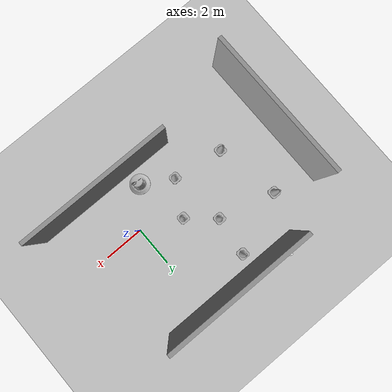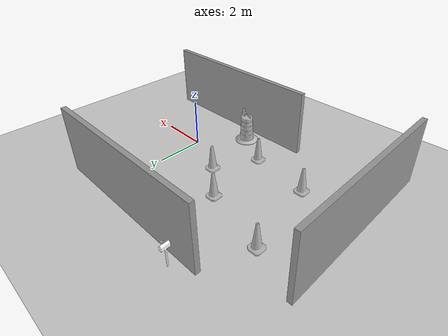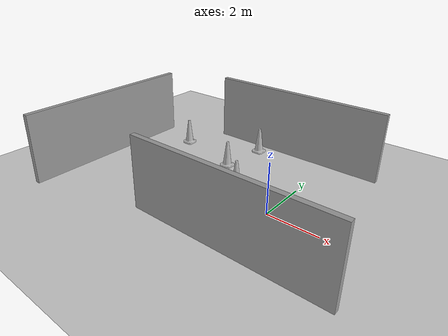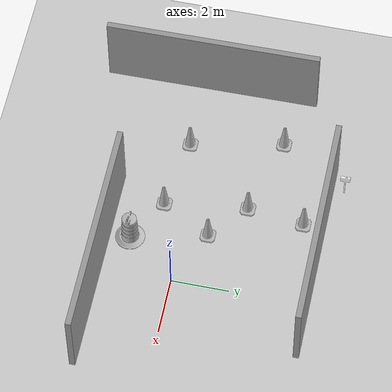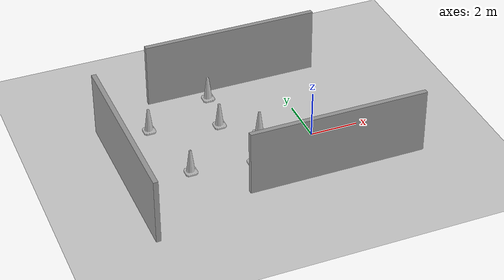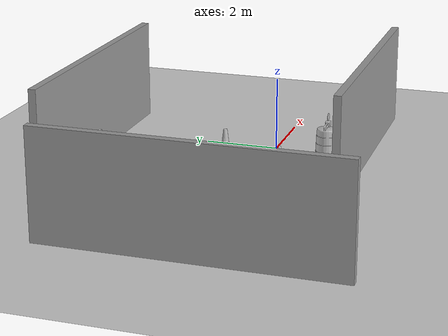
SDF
<sdf version="1.7">
 <world name="default">
  <light name="sun" type="directional">
   <pose>0 0 10 0 -0 0</pose>
   <diffuse>0.8 0.8 0.8 1</diffuse>
   <specular>0.2 0.2 0.2 1</specular>
   <attenuation>
    <range>1000</range>
    <constant>0.9</constant>
    <linear>0.01</linear>
    <quadratic>0.001</quadratic>
   </attenuation>
   <direction>-0.5 0.1 -0.9</direction>
   <spot><inner_angle>0</inner_angle><outer_angle>0</outer_angle><falloff>0</falloff></spot>
  </light>
  <model name="ground_plane">
   <static>1</static>
   <link name="link">
    <collision name="collision">
     <geometry><plane><normal>0 0 1</normal><size>100 100</size></plane></geometry>
     <surface>
      <contact><collide_bitmask>65535</collide_bitmask></contact>
      <friction><ode><mu>100</mu><mu2>50</mu2></ode></friction>
     </surface>
    </collision>
    <visual name="visual">
     <cast_shadows>0</cast_shadows>
     <geometry><plane><normal>0 0 1</normal><size>100 100</size></plane></geometry>
     <material>
      <script><uri>file://media/materials/scripts/gazebo.material</uri><name>Gazebo/Grey</name></script>
     </material>
    </visual>
   </link>
  </model>
  <gravity>0 0 -9.8</gravity>
  <magnetic_field>6e-06 2.3e-05 -4.2e-05</magnetic_field>
  <atmosphere type="adiabatic"/>
  <physics type="ode">
   <max_step_size>0.001</max_step_size>
   <real_time_factor>1</real_time_factor>
   <real_time_update_rate>1000</real_time_update_rate>
  </physics>
  <scene><ambient>0.4 0.4 0.4 1</ambient><background>0.7 0.7 0.7 1</background><shadows>1</shadows></scene>
  <audio><device>default</device></audio>
  <spherical_coordinates>
   <surface_model>EARTH_WGS84</surface_model>
   <latitude_deg>0</latitude_deg>
   <longitude_deg>0</longitude_deg>
   <elevation>0</elevation>
   <heading_deg>0</heading_deg>
  </spherical_coordinates>
  <model name="Construction Cone">
   <link name="link">
    <collision name="collision">
     <geometry>
      <mesh><scale>10 10 10</scale><uri>model://construction_cone/meshes/construction_cone.dae</uri></mesh>
     </geometry>
    </collision>
    <visual name="visual">
     <geometry>
      <mesh><scale>10 10 10</scale><uri>model://construction_cone/meshes/construction_cone.dae</uri></mesh>
     </geometry>
    </visual>
    <inertial>
     <inertia><ixx>1</ixx><ixy>0</ixy><ixz>0</ixz><iyy>1</iyy><iyz>0</iyz><izz>1</izz></inertia>
     <mass>1</mass>
    </inertial>
   </link>
   <pose>-5.44459 -0.487929 -0 0 -0 0</pose>
  </model>
  <model name="Construction Barrel">
   <link name="link">
    <inertial>
     <pose>0 0 0.4 0 -0 0</pose>
     <mass>500</mass>
     <inertia><ixx>51.2096</ixx><iyy>51.2096</iyy><izz>25</izz><ixy>0</ixy><ixz>0</ixz><iyz>0</iyz></inertia>
    </inertial>
    <collision name="collision">
     <geometry><mesh><uri>model://construction_barrel/meshes/construction_barrel.dae</uri></mesh></geometry>
    </collision>
    <visual name="visual">
     <geometry><mesh><uri>model://construction_barrel/meshes/construction_barrel.dae</uri></mesh></geometry>
    </visual>
   </link>
   <pose>-1.40506 -1.73236 -0 0 0 -3.4e-05</pose>
  </model>
  <model name="grey_wall">
   <static>1</static>
   <link name="link">
    <pose>0 0 1.4 0 -0 0</pose>
    <collision name="collision"><geometry><box><size>7.5 0.2 2.8</size></box></geometry></collision>
    <visual name="visual">
     <cast_shadows>0</cast_shadows>
     <geometry><box><size>7.5 0.2 2.8</size></box></geometry>
     <material>
      <script>
       <uri>model://grey_wall/materials/scripts</uri>
       <uri>model://grey_wall/materials/textures</uri>
       <name>vrc/grey_wall</name>
      </script>
     </material>
    </visual>
   </link>
   <pose>0.006788 -2.51794 0 0 -0 0</pose>
  </model>
  <model name="Mailbox">
   <link name="link">
    <collision name="collision">
     <geometry><mesh><uri>model://mailbox/meshes/mailbox.dae</uri></mesh></geometry>
    </collision>
    <visual name="visual">
     <geometry><mesh><uri>model://mailbox/meshes/mailbox.dae</uri></mesh></geometry>
     <material>
      <script>
       <uri>model://mailbox/materials/scripts</uri>
       <uri>model://mailbox/materials/textures</uri>
       <name>Mailbox/Diffuse</name>
      </script>
     </material>
    </visual>
    <inertial>
     <inertia><ixx>1</ixx><ixy>0</ixy><ixz>0</ixz><iyy>1</iyy><iyz>0</iyz><izz>1</izz></inertia>
     <mass>1</mass>
    </inertial>
   </link>
   <pose>-4.62845 5.11382 -9e-06 5e-06 -9e-06 0</pose>
  </model>
  <model name="grey_wall_clone">
   <static>1</static>
   <link name="link">
    <pose>0 0 1.4 0 -0 0</pose>
    <collision name="collision"><geometry><box><size>7.5 0.2 2.8</size></box></geometry></collision>
    <visual name="visual">
     <cast_shadows>0</cast_shadows>
     <geometry><box><size>7.5 0.2 2.8</size></box></geometry>
     <material>
      <script>
       <uri>model://grey_wall/materials/scripts</uri>
       <uri>model://grey_wall/materials/textures</uri>
       <name>vrc/grey_wall</name>
      </script>
     </material>
    </visual>
   </link>
   <pose>-1.73912 4.65469 0 0 -0 0</pose>
  </model>
  <model name="grey_wall_clone_0">
   <static>1</static>
   <link name="link">
    <pose>0 0 1.4 0 -0 0</pose>
    <collision name="collision"><geometry><box><size>7.5 0.2 2.8</size></box></geometry></collision>
    <visual name="visual">
     <cast_shadows>0</cast_shadows>
     <geometry><box><size>7.5 0.2 2.8</size></box></geometry>
     <material>
      <script>
       <uri>model://grey_wall/materials/scripts</uri>
       <uri>model://grey_wall/materials/textures</uri>
       <name>vrc/grey_wall</name>
      </script>
     </material>
    </visual>
   </link>
   <pose>-8.00636 -0.207403 0 0 0 -1.56597</pose>
  </model>
  <model name="Construction Cone_clone">
   <link name="link">
    <collision name="collision">
     <geometry>
      <mesh><scale>10 10 10</scale><uri>model://construction_cone/meshes/construction_cone.dae</uri></mesh>
     </geometry>
    </collision>
    <visual name="visual">
     <geometry>
      <mesh><scale>10 10 10</scale><uri>model://construction_cone/meshes/construction_cone.dae</uri></mesh>
     </geometry>
    </visual>
    <inertial>
     <inertia><ixx>1</ixx><ixy>0</ixy><ixz>0</ixz><iyy>1</iyy><iyz>0</iyz><izz>1</izz></inertia>
     <mass>1</mass>
    </inertial>
   </link>
   <pose>-1.95857 0.865428 -0 0 -0 0</pose>
  </model>
  <model name="Construction Cone_clone_0">
   <link name="link">
    <collision name="collision">
     <geometry>
      <mesh><scale>10 10 10</scale><uri>model://construction_cone/meshes/construction_cone.dae</uri></mesh>
     </geometry>
    </collision>
    <visual name="visual">
     <geometry>
      <mesh><scale>10 10 10</scale><uri>model://construction_cone/meshes/construction_cone.dae</uri></mesh>
     </geometry>
    </visual>
    <inertial>
     <inertia><ixx>1</ixx><ixy>0</ixy><ixz>0</ixz><iyy>1</iyy><iyz>0</iyz><izz>1</izz></inertia>
     <mass>1</mass>
    </inertial>
   </link>
   <pose>-2.89748 -0.863905 -0 0 -0 0</pose>
  </model>
  <model name="Construction Cone_clone_1">
   <link name="link">
    <collision name="collision">
     <geometry>
      <mesh><scale>10 10 10</scale><uri>model://construction_cone/meshes/construction_cone.dae</uri></mesh>
     </geometry>
    </collision>
    <visual name="visual">
     <geometry>
      <mesh><scale>10 10 10</scale><uri>model://construction_cone/meshes/construction_cone.dae</uri></mesh>
     </geometry>
    </visual>
    <inertial>
     <inertia><ixx>1</ixx><ixy>0</ixy><ixz>0</ixz><iyy>1</iyy><iyz>0</iyz><izz>1</izz></inertia>
     <mass>1</mass>
    </inertial>
   </link>
   <pose>-3.27109 1.99683 -0 0 -0 0</pose>
  </model>
  <model name="Construction Cone_clone_2">
   <link name="link">
    <collision name="collision">
     <geometry>
      <mesh><scale>10 10 10</scale><uri>model://construction_cone/meshes/construction_cone.dae</uri></mesh>
     </geometry>
    </collision>
    <visual name="visual">
     <geometry>
      <mesh><scale>10 10 10</scale><uri>model://construction_cone/meshes/construction_cone.dae</uri></mesh>
     </geometry>
    </visual>
    <inertial>
     <inertia><ixx>1</ixx><ixy>0</ixy><ixz>0</ixz><iyy>1</iyy><iyz>0</iyz><izz>1</izz></inertia>
     <mass>1</mass>
    </inertial>
   </link>
   <pose>-6.08952 2.73193 -0 0 -0 0</pose>
  </model>
  <model name="Construction Cone_clone_1_clone">
   <link name="link">
    <collision name="collision">
     <geometry>
      <mesh><scale>10 10 10</scale><uri>model://construction_cone/meshes/construction_cone.dae</uri></mesh>
     </geometry>
    </collision>
    <visual name="visual">
     <geometry>
      <mesh><scale>10 10 10</scale><uri>model://construction_cone/meshes/construction_cone.dae</uri></mesh>
     </geometry>
    </visual>
    <inertial>
     <inertia><ixx>1</ixx><ixy>0</ixy><ixz>0</ixz><iyy>1</iyy><iyz>0</iyz><izz>1</izz></inertia>
     <mass>1</mass>
    </inertial>
   </link>
   <pose>-3.0294 3.97859 -0 0 -0 0</pose>
  </model>
 </world>
</sdf>
